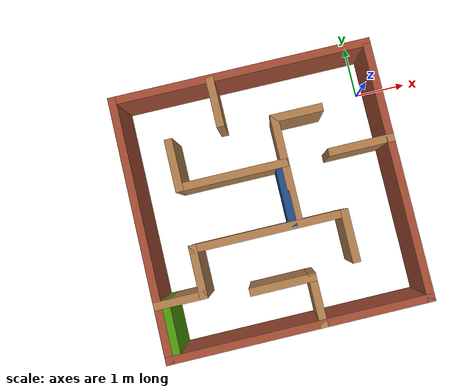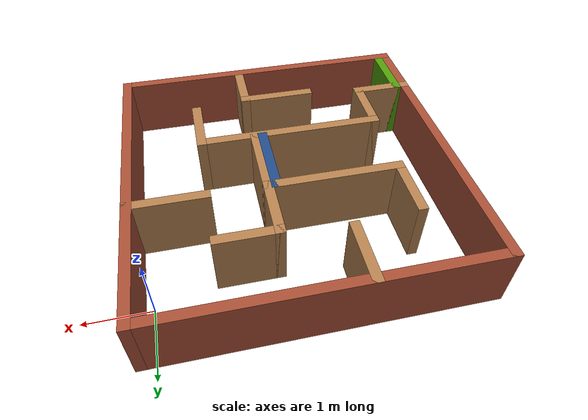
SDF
<?xml version='1.0'?>
<sdf version='1.7'>
  <model name='maze1'>
    <pose>-2.231 -1.684 0 0 -0 0</pose>
    <link name='Wall_0'>
      <collision name='Wall_0_Collision'>
        <geometry>
          <box>
            <size>5 0.15 1</size>
          </box>
        </geometry>
        <pose>0 0 0.5 0 -0 0</pose>
      </collision>
      <visual name='Wall_0_Visual'>
        <pose>0 0 0.5 0 -0 0</pose>
        <geometry>
          <box>
            <size>5 0.15 1</size>
          </box>
        </geometry>
        <material>
          <script>
            <uri>file://media/materials/scripts/gazebo.material</uri>
            <name>Gazebo/Bricks</name>
          </script>
          <ambient>1 1 1 1</ambient>
        </material>
        <meta>
          <layer>0</layer>
        </meta>
      </visual>
      <pose>-2.425 -0 0 0 -0 -1.5708</pose>
    </link>
    <link name='Wall_1'>
      <collision name='Wall_1_Collision'>
        <geometry>
          <box>
            <size>5 0.15 1</size>
          </box>
        </geometry>
        <pose>0 0 0.5 0 -0 0</pose>
      </collision>
      <visual name='Wall_1_Visual'>
        <pose>0 0 0.5 0 -0 0</pose>
        <geometry>
          <box>
            <size>5 0.15 1</size>
          </box>
        </geometry>
        <material>
          <script>
            <uri>file://media/materials/scripts/gazebo.material</uri>
            <name>Gazebo/Bricks</name>
          </script>
          <ambient>1 1 1 1</ambient>
        </material>
        <meta>
          <layer>0</layer>
        </meta>
      </visual>
      <pose>0 -2.425 0 0 -0 0</pose>
    </link>
    <link name='Wall_10'>
      <collision name='Wall_10_Collision'>
        <geometry>
          <box>
            <size>1 0.15 1</size>
          </box>
        </geometry>
        <pose>0 0 0.5 0 -0 0</pose>
      </collision>
      <visual name='Wall_10_Visual'>
        <pose>0 0 0.5 0 -0 0</pose>
        <geometry>
          <box>
            <size>1 0.15 1</size>
          </box>
        </geometry>
        <material>
          <script>
            <uri>file://media/materials/scripts/gazebo.material</uri>
            <name>Gazebo/Wood</name>
          </script>
          <ambient>1 1 1 1</ambient>
        </material>
        <meta>
          <layer>0</layer>
        </meta>
      </visual>
      <pose>-1.575 -1 0 0 -0 1.5708</pose>
    </link>
    <link name='Wall_11'>
      <collision name='Wall_11_Collision'>
        <geometry>
          <box>
            <size>3 0.15 1</size>
          </box>
        </geometry>
        <pose>0 0 0.5 0 -0 0</pose>
      </collision>
      <visual name='Wall_11_Visual'>
        <pose>0 0 0.5 0 -0 0</pose>
        <geometry>
          <box>
            <size>3 0.15 1</size>
          </box>
        </geometry>
        <material>
          <script>
            <uri>file://media/materials/scripts/gazebo.material</uri>
            <name>Gazebo/Wood</name>
          </script>
          <ambient>1 1 1 1</ambient>
        </material>
        <meta>
          <layer>0</layer>
        </meta>
      </visual>
      <pose>-0.15 -0.575 0 0 -0 0</pose>
    </link>
    <link name='Wall_12'>
      <collision name='Wall_12_Collision'>
        <geometry>
          <box>
            <size>1 0.15 1</size>
          </box>
        </geometry>
        <pose>0 0 0.5 0 -0 0</pose>
      </collision>
      <visual name='Wall_12_Visual'>
        <pose>0 0 0.5 0 -0 0</pose>
        <geometry>
          <box>
            <size>1 0.15 1</size>
          </box>
        </geometry>
        <material>
          <script>
            <uri>file://media/materials/scripts/gazebo.material</uri>
            <name>Gazebo/Wood</name>
          </script>
          <ambient>1 1 1 1</ambient>
        </material>
        <meta>
          <layer>0</layer>
        </meta>
      </visual>
      <pose>1.275 -1 0 0 -0 -1.5708</pose>
    </link>
    <link name='Wall_18'>
      <collision name='Wall_18_Collision'>
        <geometry>
          <box>
            <size>1 0.15 1</size>
          </box>
        </geometry>
        <pose>0 0 0.5 0 -0 0</pose>
      </collision>
      <visual name='Wall_18_Visual'>
        <pose>0 0 0.5 0 -0 0</pose>
        <geometry>
          <box>
            <size>1 0.15 1</size>
          </box>
        </geometry>
        <material>
          <script>
            <uri>file://media/materials/scripts/gazebo.material</uri>
            <name>Gazebo/Wood</name>
          </script>
          <ambient>1 1 1 1</ambient>
        </material>
        <meta>
          <layer>0</layer>
        </meta>
      </visual>
      <pose>0.425 1 0 0 -0 1.5708</pose>
    </link>
    <link name='Wall_19'>
      <collision name='Wall_19_Collision'>
        <geometry>
          <box>
            <size>1 0.15 1</size>
          </box>
        </geometry>
        <pose>0 0 0.5 0 -0 0</pose>
      </collision>
      <visual name='Wall_19_Visual'>
        <pose>0 0 0.5 0 -0 0</pose>
        <geometry>
          <box>
            <size>1 0.15 1</size>
          </box>
        </geometry>
        <material>
          <script>
            <uri>file://media/materials/scripts/gazebo.material</uri>
            <name>Gazebo/Wood</name>
          </script>
          <ambient>1 1 1 1</ambient>
        </material>
        <meta>
          <layer>0</layer>
        </meta>
      </visual>
      <pose>0.85 1.425 0 0 -0 0</pose>
    </link>
    <link name='Wall_2'>
      <collision name='Wall_2_Collision'>
        <geometry>
          <box>
            <size>5 0.15 1</size>
          </box>
        </geometry>
        <pose>0 0 0.5 0 -0 0</pose>
      </collision>
      <visual name='Wall_2_Visual'>
        <pose>0 0 0.5 0 -0 0</pose>
        <geometry>
          <box>
            <size>5 0.15 1</size>
          </box>
        </geometry>
        <material>
          <script>
            <uri>file://media/materials/scripts/gazebo.material</uri>
            <name>Gazebo/Bricks</name>
          </script>
          <ambient>1 1 1 1</ambient>
        </material>
        <meta>
          <layer>0</layer>
        </meta>
      </visual>
      <pose>2.425 -0 0 0 -0 1.5708</pose>
    </link>
    <link name='Wall_23'>
      <collision name='Wall_23_Collision'>
        <geometry>
          <box>
            <size>1 0.15 1</size>
          </box>
        </geometry>
        <pose>0 0 0.5 0 -0 0</pose>
      </collision>
      <visual name='Wall_23_Visual'>
        <pose>0 0 0.5 0 -0 0</pose>
        <geometry>
          <box>
            <size>1 0.15 1</size>
          </box>
        </geometry>
        <material>
          <script>
            <uri>file://media/materials/scripts/gazebo.material</uri>
            <name>Gazebo/Wood</name>
          </script>
          <ambient>1 1 1 1</ambient>
        </material>
        <meta>
          <layer>0</layer>
        </meta>
      </visual>
      <pose>-1.575 1 0 0 -0 1.5708</pose>
    </link>
    <link name='Wall_25'>
      <collision name='Wall_25_Collision'>
        <geometry>
          <box>
            <size>2.15 0.15 1</size>
          </box>
        </geometry>
        <pose>0 0 0.5 0 -0 0</pose>
      </collision>
      <visual name='Wall_25_Visual'>
        <pose>0 0 0.5 0 -0 0</pose>
        <geometry>
          <box>
            <size>2.15 0.15 1</size>
          </box>
        </geometry>
        <material>
          <script>
            <uri>file://media/materials/scripts/gazebo.material</uri>
            <name>Gazebo/Wood</name>
          </script>
          <ambient>1 1 1 1</ambient>
        </material>
        <meta>
          <layer>0</layer>
        </meta>
      </visual>
      <pose>-0.575 0.575 0 0 -0 0</pose>
    </link>
    <link name='Wall_27'>
      <collision name='Wall_27_Collision'>
        <geometry>
          <box>
            <size>1.25 0.15 1</size>
          </box>
        </geometry>
        <pose>0 0 0.5 0 -0 0</pose>
      </collision>
      <visual name='Wall_27_Visual'>
        <pose>0 0 0.5 0 -0 0</pose>
        <geometry>
          <box>
            <size>1.25 0.15 1</size>
          </box>
        </geometry>
        <material>
          <script>
            <uri>file://media/materials/scripts/gazebo.material</uri>
            <name>Gazebo/Wood</name>
          </script>
          <ambient>1 1 1 1</ambient>
        </material>
        <meta>
          <layer>0</layer>
        </meta>
      </visual>
      <pose>0.425 0.025 0 0 -0 -1.5708</pose>
    </link>
    <link name='Wall_3'>
      <collision name='Wall_3_Collision'>
        <geometry>
          <box>
            <size>5 0.15 1</size>
          </box>
        </geometry>
        <pose>0 0 0.5 0 -0 0</pose>
      </collision>
      <visual name='Wall_3_Visual'>
        <pose>0 0 0.5 0 -0 0</pose>
        <geometry>
          <box>
            <size>5 0.15 1</size>
          </box>
        </geometry>
        <material>
          <script>
            <uri>file://media/materials/scripts/gazebo.material</uri>
            <name>Gazebo/Bricks</name>
          </script>
          <ambient>1 1 1 1</ambient>
        </material>
        <meta>
          <layer>0</layer>
        </meta>
      </visual>
      <pose>0 2.425 0 0 -0 3.14159</pose>
    </link>
    <link name='Wall_31'>
      <collision name='Wall_31_Collision'>
        <geometry>
          <box>
            <size>1.25 0.15 1</size>
          </box>
        </geometry>
        <pose>0 0 0.5 0 -0 0</pose>
      </collision>
      <visual name='Wall_31_Visual'>
        <pose>0 0 0.5 0 -0 0</pose>
        <geometry>
          <box>
            <size>1.25 0.15 1</size>
          </box>
        </geometry>
        <material>
          <script>
            <uri>file://media/materials/scripts/gazebo.material</uri>
            <name>Gazebo/Wood</name>
          </script>
          <ambient>1 1 1 1</ambient>
        </material>
        <meta>
          <layer>0</layer>
        </meta>
      </visual>
      <pose>1.875 0.575 0 0 -0 3.14159</pose>
    </link>
    <link name='Wall_35'>
      <collision name='Wall_35_Collision'>
        <geometry>
          <box>
            <size>1 0.15 1</size>
          </box>
        </geometry>
        <pose>0 0 0.5 0 -0 0</pose>
      </collision>
      <visual name='Wall_35_Visual'>
        <pose>0 0 0.5 0 -0 0</pose>
        <geometry>
          <box>
            <size>1 0.15 1</size>
          </box>
        </geometry>
        <material>
          <script>
            <uri>file://media/materials/scripts/gazebo.material</uri>
            <name>Gazebo/Wood</name>
          </script>
          <ambient>1 1 1 1</ambient>
        </material>
        <meta>
          <layer>0</layer>
        </meta>
      </visual>
      <pose>0.425 -2 0 0 -0 1.5708</pose>
    </link>
    <link name='Wall_36'>
      <collision name='Wall_36_Collision'>
        <geometry>
          <box>
            <size>1.25 0.15 1</size>
          </box>
        </geometry>
        <pose>0 0 0.5 0 -0 0</pose>
      </collision>
      <visual name='Wall_36_Visual'>
        <pose>0 0 0.5 0 -0 0</pose>
        <geometry>
          <box>
            <size>1.25 0.15 1</size>
          </box>
        </geometry>
        <material>
          <script>
            <uri>file://media/materials/scripts/gazebo.material</uri>
            <name>Gazebo/Wood</name>
          </script>
          <ambient>1 1 1 1</ambient>
        </material>
        <meta>
          <layer>0</layer>
        </meta>
      </visual>
      <pose>-0.125 -1.575 0 0 -0 3.14159</pose>
    </link>
    <link name='Wall_41'>
      <collision name='Wall_41_Collision'>
        <geometry>
          <box>
            <size>1.25 0.15 1</size>
          </box>
        </geometry>
        <pose>0 0 0.5 0 -0 0</pose>
      </collision>
      <visual name='Wall_41_Visual'>
        <pose>0 0 0.5 0 -0 0</pose>
        <geometry>
          <box>
            <size>1.25 0.15 1</size>
          </box>
        </geometry>
        <material>
          <script>
            <uri>file://media/materials/scripts/gazebo.material</uri>
            <name>Gazebo/Grey</name>
          </script>
          <ambient>0.12549 0.290196 0.529412 1</ambient>
        </material>
        <meta>
          <layer>0</layer>
        </meta>
      </visual>
      <pose>0.305 0.024 0 0 -0 -1.5708</pose>
    </link>
    <link name='Wall_47'>
      <collision name='Wall_47_Collision'>
        <geometry>
          <box>
            <size>1 0.15 1</size>
          </box>
        </geometry>
        <pose>0 0 0.5 0 -0 0</pose>
      </collision>
      <visual name='Wall_47_Visual'>
        <pose>0 0 0.5 0 -0 0</pose>
        <geometry>
          <box>
            <size>1 0.15 1</size>
          </box>
        </geometry>
        <material>
          <script>
            <uri>file://media/materials/scripts/gazebo.material</uri>
            <name>Gazebo/Grey</name>
          </script>
          <ambient>0.305882 0.603922 0.0235294 1</ambient>
        </material>
        <meta>
          <layer>0</layer>
        </meta>
      </visual>
      <pose>-2.275 -1.85 0 0 -0 -1.5708</pose>
    </link>
    <link name='Wall_6'>
      <collision name='Wall_6_Collision'>
        <geometry>
          <box>
            <size>1 0.15 1</size>
          </box>
        </geometry>
        <pose>0 0 0.5 0 -0 0</pose>
      </collision>
      <visual name='Wall_6_Visual'>
        <pose>0 0 0.5 0 -0 0</pose>
        <geometry>
          <box>
            <size>1 0.15 1</size>
          </box>
        </geometry>
        <material>
          <script>
            <uri>file://media/materials/scripts/gazebo.material</uri>
            <name>Gazebo/Wood</name>
          </script>
          <ambient>1 1 1 1</ambient>
        </material>
        <meta>
          <layer>0</layer>
        </meta>
      </visual>
      <pose>-0.575 2 0 0 -0 -1.5708</pose>
    </link>
    <link name='Wall_9'>
      <collision name='Wall_9_Collision'>
        <geometry>
          <box>
            <size>1 0.15 1</size>
          </box>
        </geometry>
        <pose>0 0 0.5 0 -0 0</pose>
      </collision>
      <visual name='Wall_9_Visual'>
        <pose>0 0 0.5 0 -0 0</pose>
        <geometry>
          <box>
            <size>1 0.15 1</size>
          </box>
        </geometry>
        <material>
          <script>
            <uri>file://media/materials/scripts/gazebo.material</uri>
            <name>Gazebo/Wood</name>
          </script>
          <ambient>1 1 1 1</ambient>
        </material>
        <meta>
          <layer>0</layer>
        </meta>
      </visual>
      <pose>-2 -1.425 0 0 -0 0</pose>
    </link>
    <static>1</static>
  </model>
</sdf>
